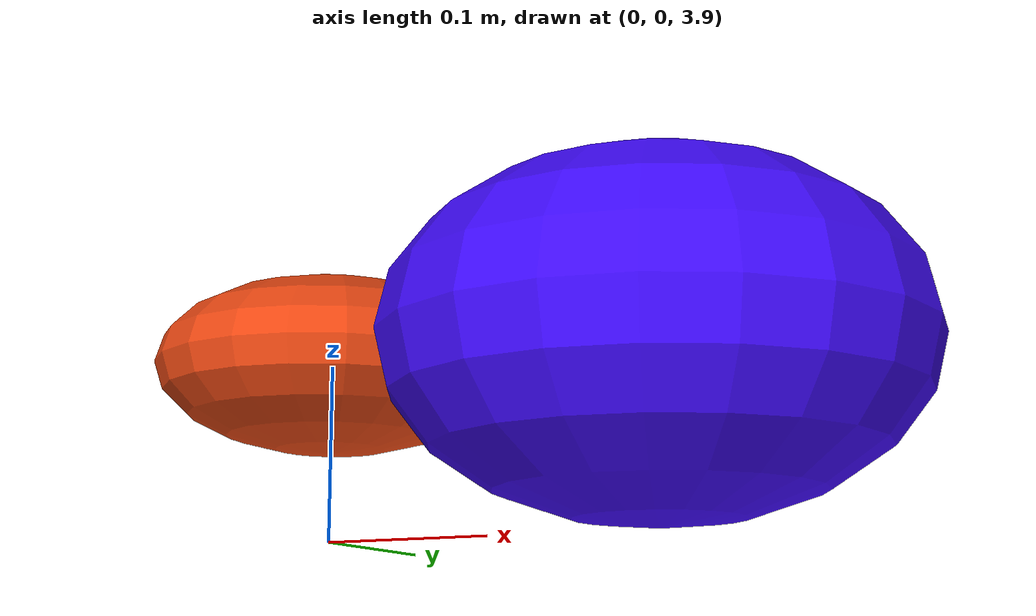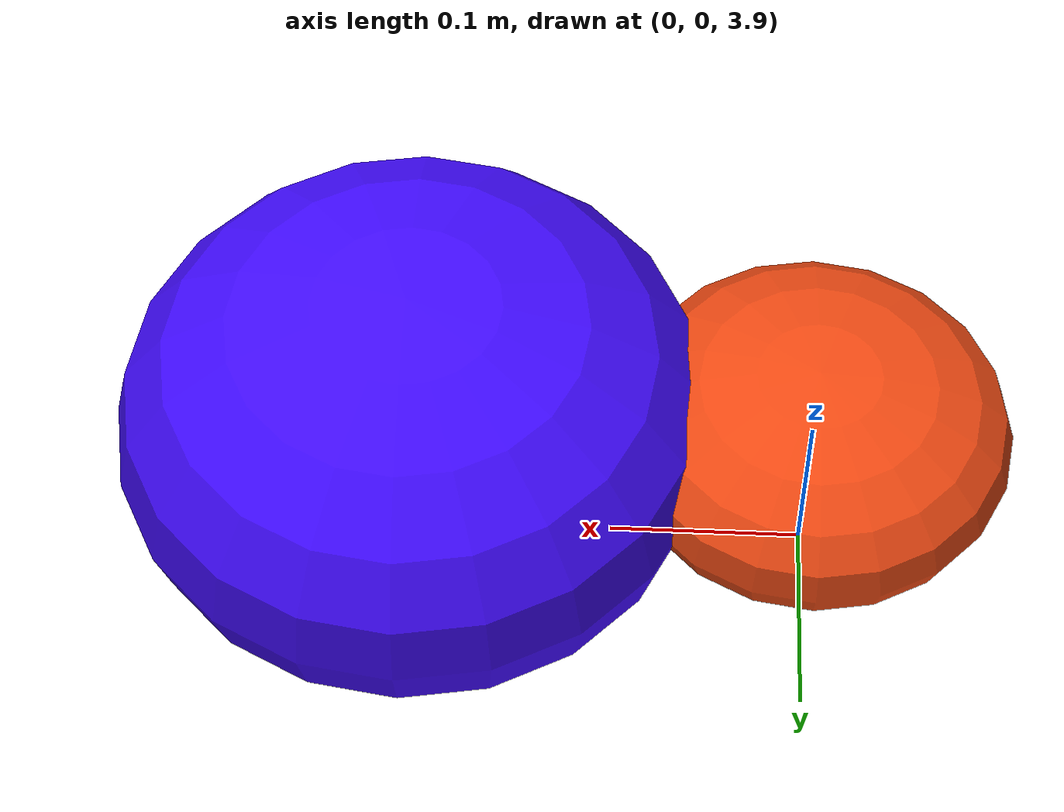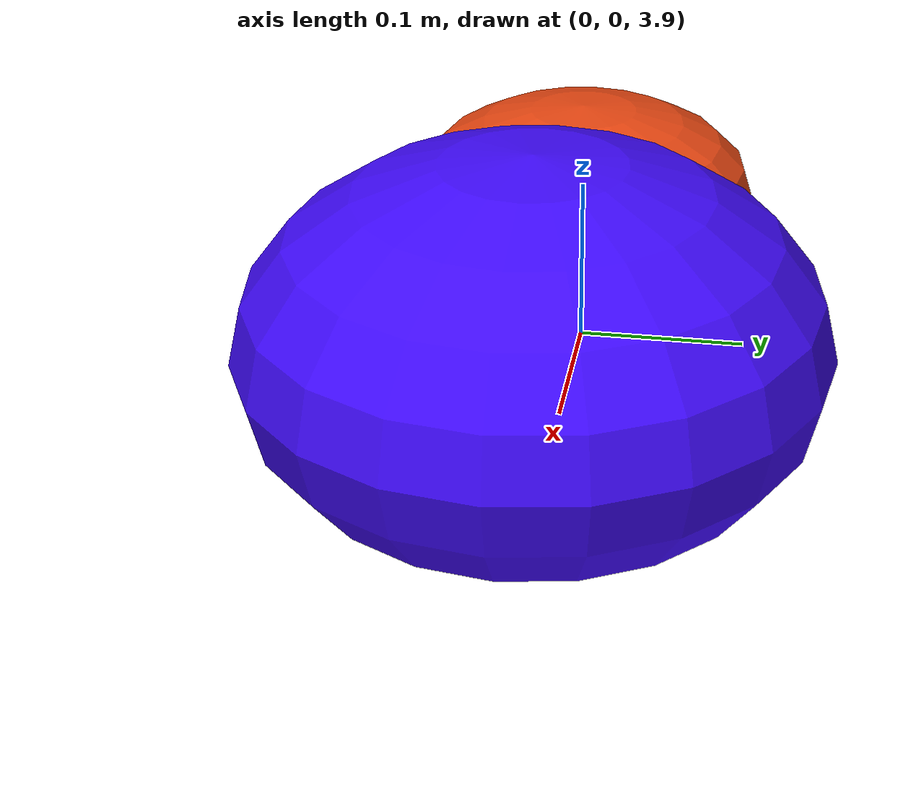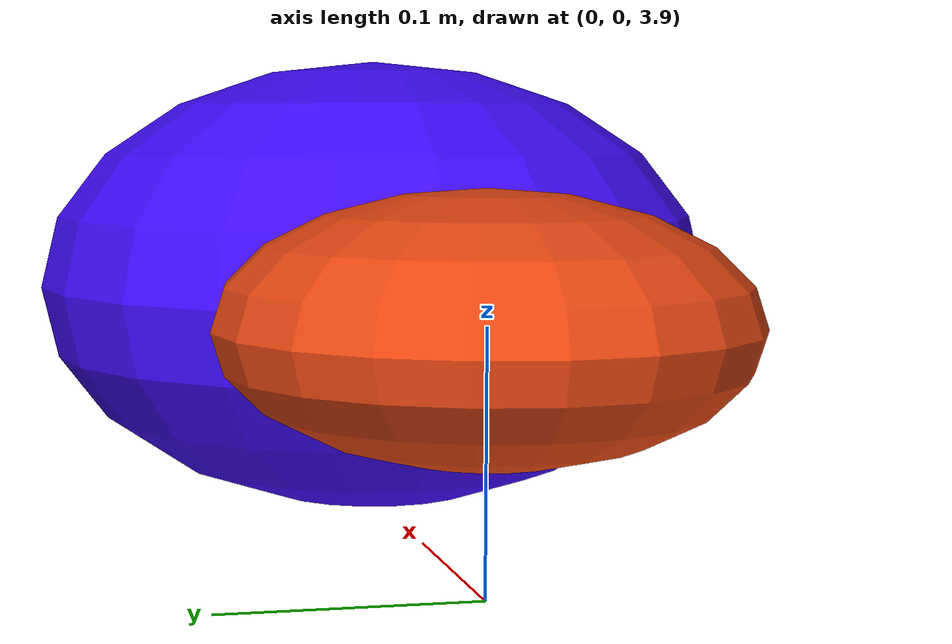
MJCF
<mujoco model="unnamed_model">
  <option timestep="0.01"/>
  <visual>
    <headlight ambient="0.5 0.5 0.5"/>
  </visual>
  <default>
    <default class="/"/>
  </default>
  <worldbody>
    <light name="//unnamed_light_0" class="/" pos="0 0 3" dir="0 0 -1" diffuse="0.5 0.5 0.5"/>
    <geom name="//unnamed_geom_0" class="/" type="plane" size="50 50 0.10000000000000001"/>
    <body name="//unnamed_body_0" pos="0 0 4">
      <joint name="//unnamed_joint_0" class="/" type="free"/>
      <geom name="//unnamed_geom_1" class="/" type="ellipsoid" size="0.10000000000000001 0.10000000000000001 0.050000000000000003" rgba="0.91000000000000003 0.27800000000000002 0.070999999999999994 1" pos="0 0 0"/>
      <geom name="//unnamed_geom_2" class="/" type="ellipsoid" size="0.14999999999999999 0.14999999999999999 0.10000000000000001" rgba="0.247 0.035000000000000003 0.97999999999999998 1" pos="0.20000000000000001 0 0"/>
    </body>
  </worldbody>
</mujoco>
